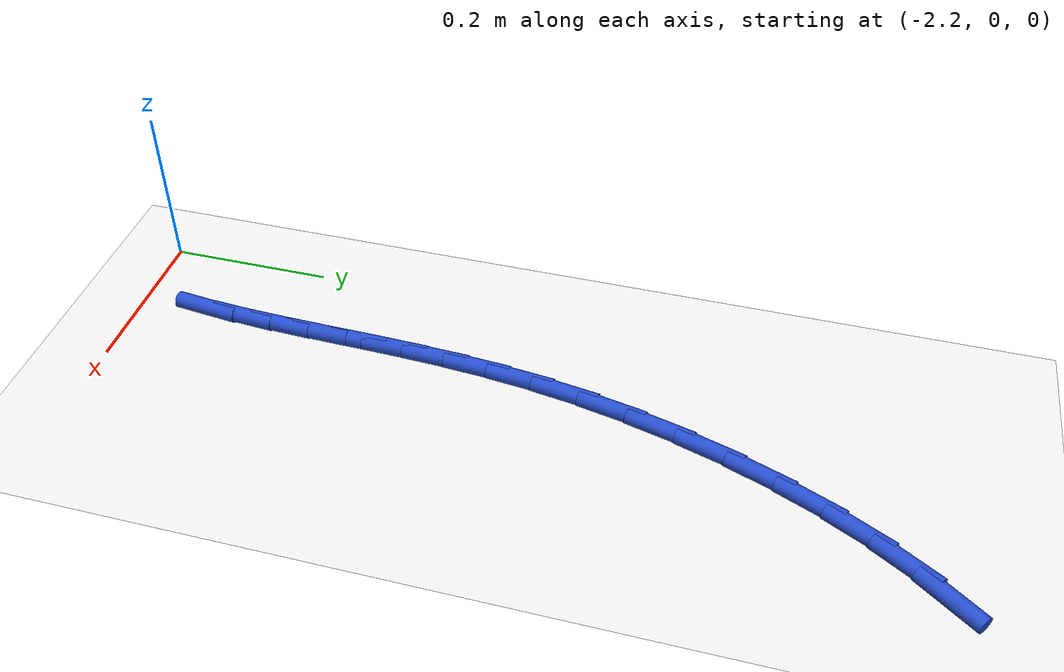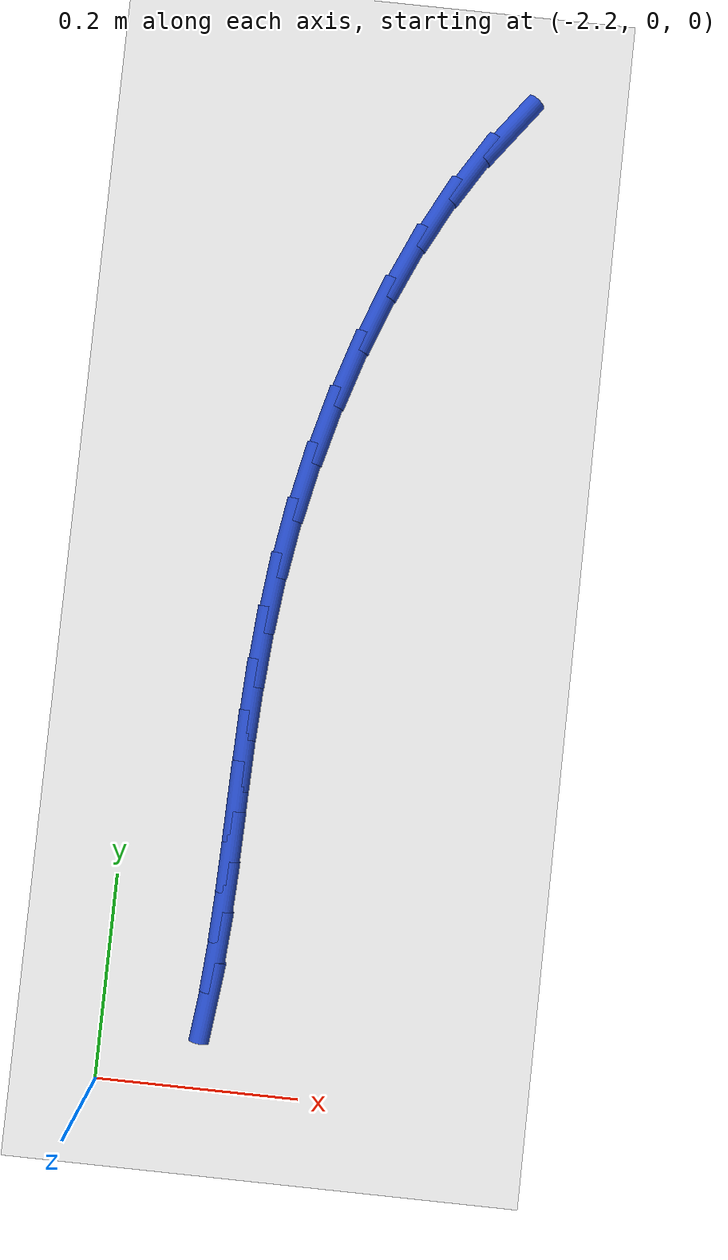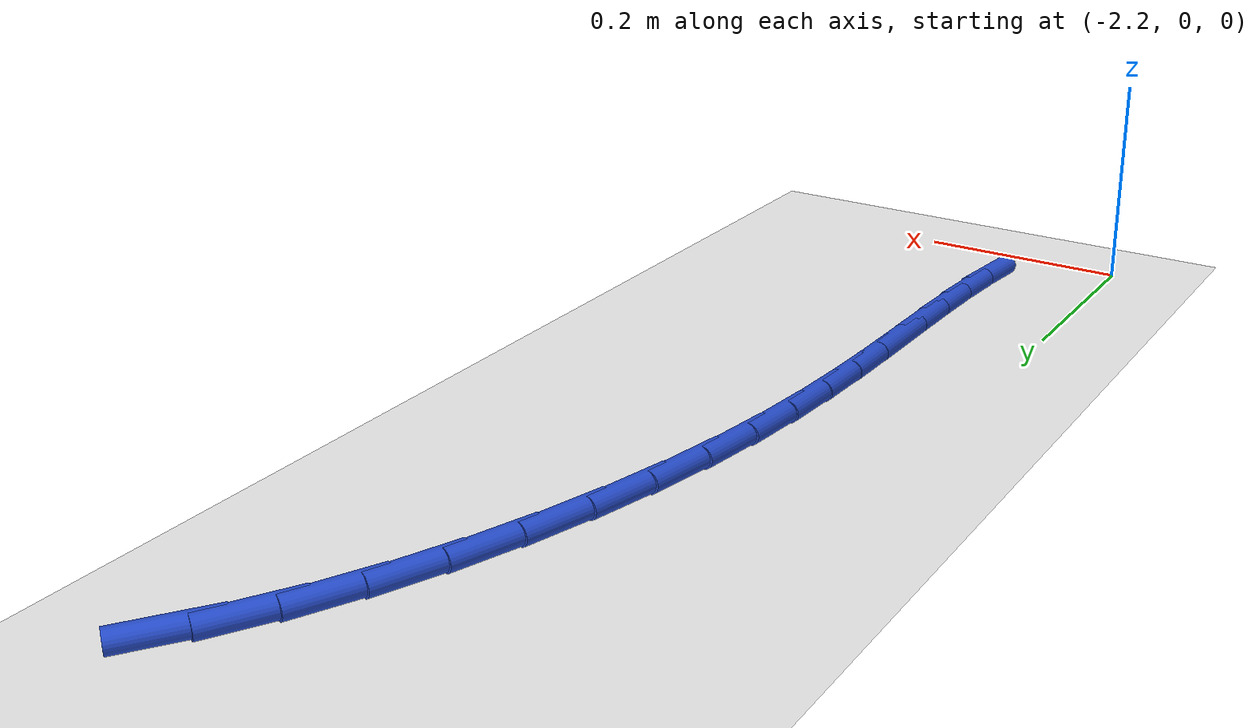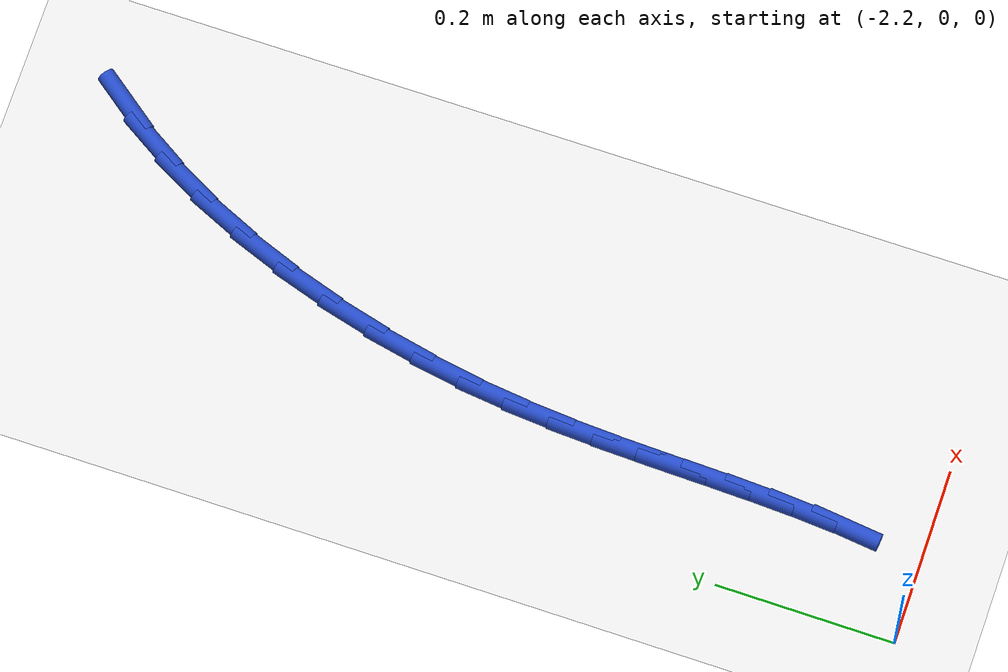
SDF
<sdf version="1.6">
 <world name="default">
  <model name="ground_plane">
   <static>1</static>
   <link name="link">
    <collision name="collision">
     <geometry><plane><normal>0 0 1</normal><size>100 100</size></plane></geometry>
     <surface><friction><ode><mu>100</mu><mu2>50</mu2></ode></friction></surface>
    </collision>
    <visual name="visual">
     <cast_shadows>0</cast_shadows>
     <geometry><plane><normal>0 0 1</normal><size>100 100</size></plane></geometry>
     <material>
      <script><uri>file://media/materials/scripts/gazebo.material</uri><name>Gazebo/WhiteGlow</name></script>
     </material>
    </visual>
   </link>
  </model>
  <model name="line">
   <link name="link_53">
    <pose>-1.8912743611974165 0.9746142901723824 0.01 0 1.57 0.9283749290603787</pose>
    <collision name="collision">
     <geometry><cylinder><radius>0.01</radius><length>0.08</length></cylinder></geometry>
    </collision>
    <visual name="visual">
     <material>
      <script><name>Gazebo/Blue</name><uri>file://media/materials/scripts/gazebo.material</uri></script>
     </material>
     <geometry><cylinder><radius>0.01</radius><length>0.08</length></cylinder></geometry>
    </visual>
   </link>
   <link name="link_54">
    <pose>-1.9236299252828528 0.9313763573947772 0.01 0 1.57 1.019746566510972</pose>
    <collision name="collision">
     <geometry><cylinder><radius>0.01</radius><length>0.08</length></cylinder></geometry>
    </collision>
    <visual name="visual">
     <material>
      <script><name>Gazebo/Blue</name><uri>file://media/materials/scripts/gazebo.material</uri></script>
     </material>
     <geometry><cylinder><radius>0.01</radius><length>0.08</length></cylinder></geometry>
    </visual>
   </link>
   <link name="link_55">
    <pose>-1.9531947686284052 0.8832682800217616 0.01 0 1.57 1.0963019263351506</pose>
    <collision name="collision">
     <geometry><cylinder><radius>0.01</radius><length>0.08</length></cylinder></geometry>
    </collision>
    <visual name="visual">
     <material>
      <script><name>Gazebo/Blue</name><uri>file://media/materials/scripts/gazebo.material</uri></script>
     </material>
     <geometry><cylinder><radius>0.01</radius><length>0.08</length></cylinder></geometry>
    </visual>
   </link>
   <link name="link_56">
    <pose>-1.9799081551606559 0.8312595723167838 0.01 0 1.57 1.161981417101356</pose>
    <collision name="collision">
     <geometry><cylinder><radius>0.01</radius><length>0.08</length></cylinder></geometry>
    </collision>
    <visual name="visual">
     <material>
      <script><name>Gazebo/Blue</name><uri>file://media/materials/scripts/gazebo.material</uri></script>
     </material>
     <geometry><cylinder><radius>0.01</radius><length>0.08</length></cylinder></geometry>
    </visual>
   </link>
   <link name="link_57">
    <pose>-2.00370934880619 0.77631974854329 0.01 0 1.57 1.2199030079689364</pose>
    <collision name="collision">
     <geometry><cylinder><radius>0.01</radius><length>0.08</length></cylinder></geometry>
    </collision>
    <visual name="visual">
     <material>
      <script><name>Gazebo/Blue</name><uri>file://media/materials/scripts/gazebo.material</uri></script>
     </material>
     <geometry><cylinder><radius>0.01</radius><length>0.08</length></cylinder></geometry>
    </visual>
   </link>
   <link name="link_58">
    <pose>-2.0245376134915904 0.7194183229647289 0.01 0 1.57 1.272593897706896</pose>
    <collision name="collision">
     <geometry><cylinder><radius>0.01</radius><length>0.08</length></cylinder></geometry>
    </collision>
    <visual name="visual">
     <material>
      <script><name>Gazebo/Blue</name><uri>file://media/materials/scripts/gazebo.material</uri></script>
     </material>
     <geometry><cylinder><radius>0.01</radius><length>0.08</length></cylinder></geometry>
    </visual>
   </link>
   <link name="link_59">
    <pose>-2.0423322131434425 0.6615248098445469 0.01 0 1.57 1.3222266275416488</pose>
    <collision name="collision">
     <geometry><cylinder><radius>0.01</radius><length>0.08</length></cylinder></geometry>
    </collision>
    <visual name="visual">
     <material>
      <script><name>Gazebo/Blue</name><uri>file://media/materials/scripts/gazebo.material</uri></script>
     </material>
     <geometry><cylinder><radius>0.01</radius><length>0.08</length></cylinder></geometry>
    </visual>
   </link>
   <link name="link_60">
    <pose>-2.057032411688329 0.6036087234461924 0.01 0 1.57 1.3708495413388049</pose>
    <collision name="collision">
     <geometry><cylinder><radius>0.01</radius><length>0.08</length></cylinder></geometry>
    </collision>
    <visual name="visual">
     <material>
      <script><name>Gazebo/Blue</name><uri>file://media/materials/scripts/gazebo.material</uri></script>
     </material>
     <geometry><cylinder><radius>0.01</radius><length>0.08</length></cylinder></geometry>
    </visual>
   </link>
   <link name="link_61">
    <pose>-2.068577473052834 0.5466395780331116 0.01 0 1.57 1.4193669720137025</pose>
    <collision name="collision">
     <geometry><cylinder><radius>0.01</radius><length>0.08</length></cylinder></geometry>
    </collision>
    <visual name="visual">
     <material>
      <script><name>Gazebo/Blue</name><uri>file://media/materials/scripts/gazebo.material</uri></script>
     </material>
     <geometry><cylinder><radius>0.01</radius><length>0.08</length></cylinder></geometry>
    </visual>
   </link>
   <link name="link_62">
    <pose>-2.077007962486158 0.49139301575579536 0.01 0 1.57 1.4632289868524422</pose>
    <collision name="collision">
     <geometry><cylinder><radius>0.01</radius><length>0.08</length></cylinder></geometry>
    </collision>
    <visual name="visual">
     <material>
      <script><name>Gazebo/Blue</name><uri>file://media/materials/scripts/gazebo.material</uri></script>
     </material>
     <geometry><cylinder><radius>0.01</radius><length>0.08</length></cylinder></geometry>
    </visual>
   </link>
   <link name="link_63">
    <pose>-2.0827923855760755 0.4378256796093578 0.01 0 1.57 1.4995840490043064</pose>
    <collision name="collision">
     <geometry><cylinder><radius>0.01</radius><length>0.08</length></cylinder></geometry>
    </collision>
    <visual name="visual">
     <material>
      <script><name>Gazebo/Blue</name><uri>file://media/materials/scripts/gazebo.material</uri></script>
     </material>
     <geometry><cylinder><radius>0.01</radius><length>0.08</length></cylinder></geometry>
    </visual>
   </link>
   <link name="link_64">
    <pose>-2.086512232068594 0.3856779816758233 0.01 0 1.57 1.5269557666267075</pose>
    <collision name="collision">
     <geometry><cylinder><radius>0.01</radius><length>0.08</length></cylinder></geometry>
    </collision>
    <visual name="visual">
     <material>
      <script><name>Gazebo/Blue</name><uri>file://media/materials/scripts/gazebo.material</uri></script>
     </material>
     <geometry><cylinder><radius>0.01</radius><length>0.08</length></cylinder></geometry>
    </visual>
   </link>
   <link name="link_65">
    <pose>-2.0887489923542755 0.3346903328036524 0.01 0 1.57 1.5441458322790114</pose>
    <collision name="collision">
     <geometry><cylinder><radius>0.01</radius><length>0.08</length></cylinder></geometry>
    </collision>
    <visual name="visual">
     <material>
      <script><name>Gazebo/Blue</name><uri>file://media/materials/scripts/gazebo.material</uri></script>
     </material>
     <geometry><cylinder><radius>0.01</radius><length>0.08</length></cylinder></geometry>
    </visual>
   </link>
   <link name="link_66">
    <pose>-2.0900841568236808 0.28460314384130564 0.01 0 1.57 1.5502707036945624</pose>
    <collision name="collision">
     <geometry><cylinder><radius>0.01</radius><length>0.08</length></cylinder></geometry>
    </collision>
    <visual name="visual">
     <material>
      <script><name>Gazebo/Blue</name><uri>file://media/materials/scripts/gazebo.material</uri></script>
     </material>
     <geometry><cylinder><radius>0.01</radius><length>0.08</length></cylinder></geometry>
    </visual>
   </link>
   <link name="link_67">
    <pose>-2.0910992158673727 0.2351568256372449 0.01 0 1.57 1.544786845321721</pose>
    <collision name="collision">
     <geometry><cylinder><radius>0.01</radius><length>0.08</length></cylinder></geometry>
    </collision>
    <visual name="visual">
     <material>
      <script><name>Gazebo/Blue</name><uri>file://media/materials/scripts/gazebo.material</uri></script>
     </material>
     <geometry><cylinder><radius>0.01</radius><length>0.08</length></cylinder></geometry>
    </visual>
   </link>
   <link name="link_68">
    <pose>-2.0923756598759127 0.18609178903993043 0.01 0 1.57 1.527521877497244</pose>
    <collision name="collision">
     <geometry><cylinder><radius>0.01</radius><length>0.08</length></cylinder></geometry>
    </collision>
    <visual name="visual">
     <material>
      <script><name>Gazebo/Blue</name><uri>file://media/materials/scripts/gazebo.material</uri></script>
     </material>
     <geometry><cylinder><radius>0.01</radius><length>0.08</length></cylinder></geometry>
    </visual>
   </link>
   <link name="link_69">
    <pose>-2.0944949792398617 0.1371484448978238 0.01 0 1.57 1.4987209958708538</pose>
    <collision name="collision">
     <geometry><cylinder><radius>0.01</radius><length>0.08</length></cylinder></geometry>
    </collision>
    <visual name="visual">
     <material>
      <script><name>Gazebo/Blue</name><uri>file://media/materials/scripts/gazebo.material</uri></script>
     </material>
     <geometry><cylinder><radius>0.01</radius><length>0.08</length></cylinder></geometry>
    </visual>
   </link>
   <link name="link_70">
    <pose>-2.0980386643497835 0.08806720405938544 0.01 0 1.57 1.4591361083514869</pose>
    <collision name="collision">
     <geometry><cylinder><radius>0.01</radius><length>0.08</length></cylinder></geometry>
    </collision>
    <visual name="visual">
     <material>
      <script><name>Gazebo/Blue</name><uri>file://media/materials/scripts/gazebo.material</uri></script>
     </material>
     <geometry><cylinder><radius>0.01</radius><length>0.08</length></cylinder></geometry>
    </visual>
   </link>
  </model>
 </world>
</sdf>
